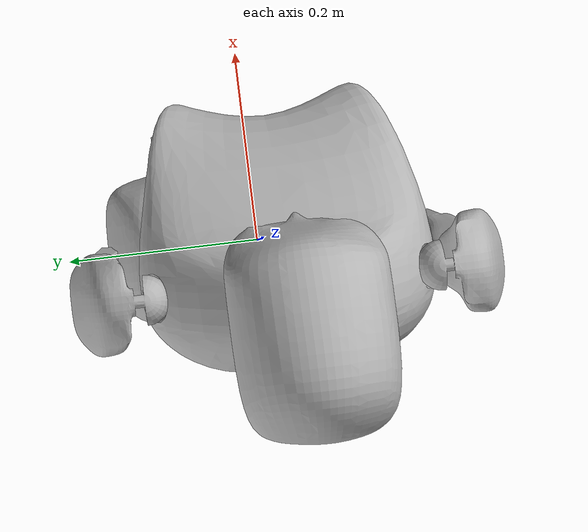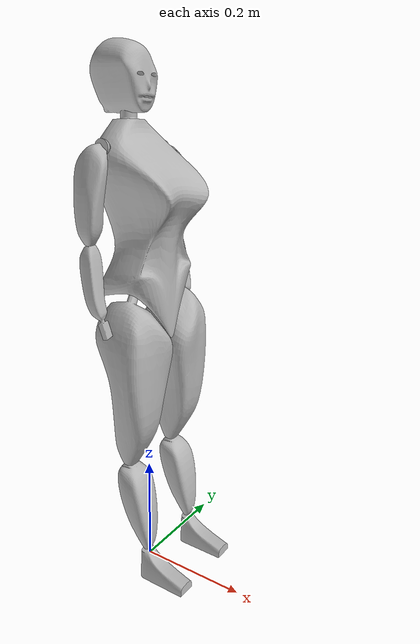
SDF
<?xml version='1.0'?>
<sdf version='1.7'>
  <model name='Selene'>

    <static>false</static>

    <!-- #######################################################   LINKS   ################################################################### -->
    <!-- Base -->
    <link name='base_link'>
      <inertial>
        <pose>-0.010002 0.01137 0.674728 0 -0 0</pose>
        <mass>3.78181</mass>
        <inertia>
          <ixx>0.0289882</ixx> <ixy>-2.34953e-05</ixy> <ixz>0.00203839</ixz>
          <iyy>0.0282472</iyy> <iyz>0.000277812</iyz> <izz>0.00985572</izz>
        </inertia>
      </inertial>

      <visual name='base_link_visual'>
        <pose>0 0 0 0 -0 0</pose>
        <geometry>
          <mesh>
            <scale>1 1 1</scale>
            <uri>file:///home/drak/ros2_ws/src/humanoid_robot/meshes/base_link.STL</uri>
          </mesh>
        </geometry>
      </visual>

      <collision name='base_link_collision'>
        <pose>0 0 0 0 -0 0</pose>
        <geometry>
          <mesh>
            <scale>1 1 1</scale>
            <uri>file:///home/drak/ros2_ws/src/humanoid_robot/meshes/base_link.STL</uri>
          </mesh>
        </geometry>
      </collision>
    </link>

    <!-- #####  UPPER BODY  ##### -->
    <!-- Head -->
    <link name='Head'>
      <pose relative_to='Neck_Pitch'>0 0 0 0 0 0</pose>
      <inertial>
        <pose>2e-06 -0 0.009204 0 -0 0</pose>
        <mass>0.0204756</mass>
        <inertia>
          <ixx>2.48857e-06</ixx> <ixy>1.58933e-11</ixy> <ixz>-1.53588e-11</ixz>
          <iyy>2.48861e-06</iyy> <iyz>1.05245e-12</iyz> <izz>2.30242e-06</izz>
        </inertia>
      </inertial>

      <visual name='Head_visual'>
        <pose>0 0 0 0 -0 0</pose>
        <geometry>
          <mesh>
            <scale>1 1 1</scale>
            <uri>file:///home/drak/ros2_ws/src/humanoid_robot/meshes/Head.STL</uri>
          </mesh>
        </geometry>
      </visual>

      <collision name='Head_collision'>
        <pose>0 0 0 0 -0 0</pose>
        <geometry>
          <mesh>
            <scale>1 1 1</scale>
            <uri>file:///home/drak/ros2_ws/src/humanoid_robot/meshes/Head.STL</uri>
          </mesh>
        </geometry>
      </collision>
    </link>

    <!-- *****  Shoulders  ***** -->
    <!-- Left Shoulder -->
    <link name='Shoulder_Left'>
      <pose relative_to='TorsoShoulder_Left_Roll'>0 0 0 0 0 0</pose>
      <inertial>
        <pose>-0.000226 -0.035481 -0.068302 0 -0 0</pose>
        <mass>0.173962</mass>
        <inertia>
          <ixx>0.000290784</ixx> <ixy>8.53619e-08</ixy> <ixz>9.28025e-07</ixz>
          <iyy>0.000299832</iyy> <iyz>-4.02822e-05</iyz> <izz>4.95215e-05</izz>
        </inertia>
      </inertial>

      <visual name='Shoulder_Left_visual'>
        <pose>0 0 0 0 -0 0</pose>
        <geometry>
          <mesh>
            <scale>1 1 1</scale>
            <uri>file:///home/drak/ros2_ws/src/humanoid_robot/meshes/Shoulder_Left.STL</uri>
          </mesh>
        </geometry>
      </visual>

      <collision name='Shoulder_Left_collision'>
        <pose>0 0 0 0 -0 0</pose>
        <geometry>
          <mesh>
            <scale>1 1 1</scale>
            <uri>file:///home/drak/ros2_ws/src/humanoid_robot/meshes/Shoulder_Left.STL</uri>
          </mesh>
        </geometry>
      </collision>
    </link>

   <!-- Right Shoulder -->
   <link name='Shoulder_Right'>
      <pose relative_to='TorsoShoulder_Right_Roll'>0 0 0 0 0 0</pose>
      <inertial>
        <pose>-0.000227 0.035481 -0.068303 0 -0 0</pose>
        <mass>0.173956</mass>
        <inertia>
          <ixx>0.000290776</ixx> <ixy>-8.64319e-08</ixy> <ixz>9.31069e-07</ixz>
          <iyy>0.000299821</iyy> <iyz>4.0282e-05</iyz> <izz>4.95193e-05</izz>
        </inertia>
      </inertial>

      <visual name='Shoulder_Right_visual'>
        <pose>0 0 0 0 -0 0</pose>
        <geometry>
          <mesh>
            <scale>1 1 1</scale>
            <uri>file:///home/drak/ros2_ws/src/humanoid_robot/meshes/Shoulder_Right.STL</uri>
          </mesh>
        </geometry>
      </visual>

      <collision name='Shoulder_Right_collision'>
        <pose>0 0 0 0 -0 0</pose>
        <geometry>
          <mesh>
            <scale>1 1 1</scale>
            <uri>file:///home/drak/ros2_ws/src/humanoid_robot/meshes/Shoulder_Right.STL</uri>
          </mesh>
        </geometry>
      </collision>
    </link>

    <!-- *****  Elbows  ***** -->
    <!-- Left Elbow -->
    <link name='Elbow_Left'>
      <pose relative_to='ShoulderElbow_Left'>0 0 0 0 -0 0</pose>
      <inertial>
        <pose>0.009283 -0.0055 -0.062153 0 -0 0</pose>
        <mass>0.0806796</mass>
        <inertia>
          <ixx>0.000100138</ixx> <ixy>8.50148e-07</ixy> <ixz>2.11719e-05</ixz>
          <iyy>0.000104806</iyy> <iyz>-4.72232e-06</iyz> <izz>1.42978e-05</izz>
        </inertia>
      </inertial>

      <visual name='Elbow_Left_visual'>
        <pose>0 0 0 0 -0 0</pose>
        <geometry>
          <mesh>
            <scale>1 1 1</scale>
            <uri>file:///home/drak/ros2_ws/src/humanoid_robot/meshes/Elbow_Left.STL</uri>
          </mesh>
        </geometry>
      </visual>

      <collision name='Elbow_Left_collision'>
        <pose>0 0 0 0 -0 0</pose>
        <geometry>
          <mesh>
            <scale>1 1 1</scale>
            <uri>file:///home/drak/ros2_ws/src/humanoid_robot/meshes/Elbow_Left.STL</uri>
          </mesh>
        </geometry>
      </collision>
    </link>

    <!-- Right Elbow -->
    <link name='Elbow_Right'>
      <pose relative_to='ShoulderElbow_Right'>0 0 0 0 -0 0</pose>
      <inertial>
        <pose>0.009283 0.0055 -0.062153 0 -0 0</pose>
        <mass>0.0806748</mass>
        <inertia>
          <ixx>0.000100131</ixx> <ixy>-8.50347e-07</ixy> <ixz>2.11696e-05</ixz>
          <iyy>0.000104798</iyy> <iyz>4.72283e-06</iyz> <izz>1.42969e-05</izz>
        </inertia>
      </inertial>

      <visual name='Elbow_Right_visual'>
        <pose>0 0 0 0 -0 0</pose>
        <geometry>
          <mesh>
            <scale>1 1 1</scale>
            <uri>file:///home/drak/ros2_ws/src/humanoid_robot/meshes/Elbow_Right.STL</uri>
          </mesh>
        </geometry>
      </visual>

      <collision name='Elbow_Right_collision'>
        <pose>0 0 0 0 -0 0</pose>
        <geometry>
          <mesh>
            <scale>1 1 1</scale>
            <uri>file:///home/drak/ros2_ws/src/humanoid_robot/meshes/Elbow_Right.STL</uri>
          </mesh>
        </geometry>
      </collision>
    </link>

    <!-- #####  LOWER BODY  ##### -->
    <!-- *****  Thighs  ***** -->
    <!-- Left Thigh -->
    <link name='Thigh_Left'>
      <pose relative_to='TorsoThigh_Left_Yaw'>0 0 0 0 0 0</pose>
      <inertial>
        <pose>0.023278 -0.039197 -0.143116 0 -0 0</pose>
        <mass>1.71253</mass>
        <inertia>
          <ixx>0.00996675</ixx> <ixy>-3.24703e-05</ixy> <ixz>0.000390411</ixz>
          <iyy>0.00993893</iyy> <iyz>-0.000169586</iyz> <izz>0.00203985</izz>
        </inertia>
      </inertial>

      <visual name='Thigh_Left_visual'>
        <pose>0 0 0 0 -0 0</pose>
        <geometry>
          <mesh>
            <scale>1 1 1</scale>
            <uri>file:///home/drak/ros2_ws/src/humanoid_robot/meshes/Thigh_Left.STL</uri>
          </mesh>
        </geometry>
      </visual>

      <collision name='Thigh_Left_collision'>
        <pose>0 0 0 0 -0 0</pose>
        <geometry>
          <mesh>
            <scale>1 1 1</scale>
            <uri>file:///home/drak/ros2_ws/src/humanoid_robot/meshes/Thigh_Left.STL</uri>
          </mesh>
        </geometry>
      </collision>
    </link>

    <!-- Right Thigh -->
    <link name='Thigh_Right'>
      <pose relative_to='TorsoThigh_Right_Yaw'>0 0 0 0 0 0</pose>
      <inertial>
        <pose>0.023281 0.039199 -0.143122 0 -0 0</pose>
        <mass>1.7125</mass>
        <inertia>
          <ixx>0.00996721</ixx> <ixy>3.26594e-05</ixy> <ixz>0.000390081</ixz>
          <iyy>0.00993943</iyy> <iyz>0.000169678</iyz> <izz>0.00204017</izz>
        </inertia>
      </inertial>

      <visual name='Thigh_Right_visual'>
        <pose>0 0 0 0 -0 0</pose>
        <geometry>
          <mesh>
            <scale>1 1 1</scale>
            <uri>file:///home/drak/ros2_ws/src/humanoid_robot/meshes/Thigh_Right.STL</uri>
          </mesh>
        </geometry>
      </visual>

      <collision name='Thigh_Right_collision'>
        <pose>0 0 0 0 -0 0</pose>
        <geometry>
          <mesh>
            <scale>1 1 1</scale>
            <uri>file:///home/drak/ros2_ws/src/humanoid_robot/meshes/Thigh_Right.STL</uri>
          </mesh>
        </geometry>
      </collision>
    </link>

    <!-- *****  Calves  ***** -->
    <!-- Left Calf -->
    <link name='Calf_Left'>
      <pose relative_to='ThighCalf_Left'>0 0 0 0 -0 0</pose>
      <inertial>
        <pose>0.01901 -0.0016 -0.076518 0 -0 0</pose>
        <mass>0.327205</mass>
        <inertia>
          <ixx>0.000560607</ixx> <ixy>1.83941e-06</ixy> <ixz>0.000117383</ixz>
          <iyy>0.000576927</iyy> <iyz>-6.31475e-06</iyz> <izz>0.000150877</izz>
        </inertia>
      </inertial>

      <visual name='Calf_Left_visual'>
        <pose>0 0 0 0 -0 0</pose>
        <geometry>
          <mesh>
            <scale>1 1 1</scale>
            <uri>file:///home/drak/ros2_ws/src/humanoid_robot/meshes/Calf_Left.STL</uri>
          </mesh>
        </geometry>
      </visual>

      <collision name='Calf_Left_collision'>
        <pose>0 0 0 0 -0 0</pose>
        <geometry>
          <mesh>
            <scale>1 1 1</scale>
            <uri>file:///home/drak/ros2_ws/src/humanoid_robot/meshes/Calf_Left.STL</uri>
          </mesh>
        </geometry>
      </collision>
    </link>
    <!-- Right Calf -->
    <link name='Calf_Right'>
      <pose relative_to='ThighCalf_Right'>0 0 0 0 -0 0</pose>
      <inertial>
        <pose>0.019003 0.001599 -0.076501 0 -0 0</pose>
        <mass>0.327294</mass>
        <inertia>
          <ixx>0.000560815</ixx> <ixy>-1.85322e-06</ixy> <ixz>0.000117482</ixz>
          <iyy>0.00057718</iyy> <iyz>6.35213e-06</iyz> <izz>0.000150937</izz>
        </inertia>
      </inertial>

      <visual name='Calf_Right_visual'>
        <pose>0 0 0 0 -0 0</pose>
        <geometry>
          <mesh>
            <scale>1 1 1</scale>
            <uri>file:///home/drak/ros2_ws/src/humanoid_robot/meshes/Calf_Right.STL</uri>
          </mesh>
        </geometry>
      </visual>

      <collision name='Calf_Right_collision'>
        <pose>0 0 0 0 -0 0</pose>
        <geometry>
          <mesh>
            <scale>1 1 1</scale>
            <uri>file:///home/drak/ros2_ws/src/humanoid_robot/meshes/Calf_Right.STL</uri>
          </mesh>
        </geometry>
      </collision>
    </link>

    <!-- *****  Feet  ***** -->
    <!-- Left Foot -->
    <link name='Foot_Left'>
      <pose relative_to='CalfFoot_Left'>0 0 0 0 -0 0</pose>
      <inertial>
        <pose>0.030274 8.6e-05 -0.040996 0 -0 0</pose>
        <mass>0.109031</mass>
        <inertia>
          <ixx>3.0156e-05</ixx> <ixy>1.21489e-07</ixy> <ixz>1.8161e-05</ixz>
          <iyy>9.62099e-05</iyy> <iyz>-1.16818e-07</iyz> <izz>8.50912e-05</izz>
        </inertia>
      </inertial>

      <visual name='Foot_Left_visual'>
        <pose>0 0 0 0 -0 0</pose>
        <geometry>
          <mesh>
            <scale>1 1 1</scale>
            <uri>file:///home/drak/ros2_ws/src/humanoid_robot/meshes/Foot_Left.STL</uri>
          </mesh>
        </geometry>
      </visual>

      <collision name='Foot_Left_collision'>
        <pose>0 0 0 0 -0 0</pose>
        <geometry>
          <mesh>
            <scale>1 1 1</scale>
            <uri>file:///home/drak/ros2_ws/src/humanoid_robot/meshes/Foot_Left.STL</uri>
          </mesh>
        </geometry>
      </collision>

      <sensor name="contact_sensor" type="contact">
        <update_rate>100</update_rate>  <!-- How often it updates -->
        <always_on>true</always_on>
        <visualize>true</visualize>
        <contact>
          <collision>Foot_Left_collision</collision>  <!-- The part that detects contact -->
        </contact>
      </sensor>
    </link>

    <!-- Right Foot -->
    <link name='Foot_Right'>
      <pose relative_to='CalfFoot_Right'>0 0 0 0 -0 0</pose>
      <inertial>
        <pose>0.030274 8.6e-05 -0.040996 0 -0 0</pose>
        <mass>0.109031</mass>
        <inertia>
          <ixx>3.0156e-05</ixx> <ixy>1.21487e-07</ixy> <ixz>1.8161e-05</ixz>
          <iyy>9.621e-05</iyy> <iyz>-1.16801e-07</iyz> <izz>8.50912e-05</izz>
        </inertia>
      </inertial>

      <visual name='Foot_Right_visual'>
        <pose>0 0 0 0 -0 0</pose>
        <geometry>
          <mesh>
            <scale>1 1 1</scale>
            <uri>file:///home/drak/ros2_ws/src/humanoid_robot/meshes/Foot_Right.STL</uri>
          </mesh>
        </geometry>
      </visual>

      <collision name='Foot_Right_collision'>
        <pose>0 0 0 0 -0 0</pose>
        <geometry>
          <mesh>
            <scale>1 1 1</scale>
            <uri>file:///home/drak/ros2_ws/src/humanoid_robot/meshes/Foot_Right.STL</uri>
          </mesh>
        </geometry>
      </collision>

      <sensor name="contact_sensor" type="contact">
        <update_rate>100</update_rate>  <!-- How often it updates -->
        <always_on>true</always_on>
        <visualize>true</visualize>
        <contact>
          <collision>Foot_Right_collision</collision>  <!-- The part that detects contact -->
        </contact>
      </sensor>
    </link>

    <!-- #######################################################   JOINTS   ################################################################### -->
    <joint name="world_joint" type="fixed">
        <parent>world</parent>
        <child>base_link</child>
    </joint>

    <!-- Neck -->
    <joint name='Neck_Yaw' type='revolute'>
      <pose relative_to='base_link'>-0.044306 0.010853 0.81525 0 0 0</pose>
      <parent>base_link</parent>
      <child>Neck_Yaw_Link</child>

      <!-- (Left/Right Movement) -->
      <axis>
        <xyz>0 0 1</xyz>
        <limit>
            <lower>-1.0472</lower>  <!-- 60 degrees-->
            <upper>1.0472</upper>
        </limit>
        <dynamics>
            <damping>0.05</damping>
            <friction>0.5</friction>
        </dynamics>
      </axis>

      <sensor name="force_torque_sensor" type="force_torque">
        <pose degrees="true">0 0 0.0   30 0 0</pose>
        <update_rate>100</update_rate>
        <always_on>true</always_on>
        <visualize>true</visualize>
        <topic>force_torque1</topic>
        <force_torque>
          <frame>child</frame>
          <measure_direction>parent_to_child</measure_direction>
        </force_torque>
      </sensor>

    </joint>

    <!-- Neck Yaw Link (This is a dummy link which allows us to split a universal into 2 revolute joints) -->
    <link name='Neck_Yaw_Link'>
      <pose relative_to='Neck_Yaw'>0 0 0 0 0 0</pose>
    </link>

    <joint name='Neck_Pitch' type='revolute'>
      <pose relative_to='base_link'>-0.044306 0.010853 0.81525 0 0 0</pose>
      <parent>Neck_Yaw_Link</parent>
      <child>Head</child>

      <!-- (Up/Down Movement) -->
      <axis>
        <xyz>0 1 0</xyz>
        <limit>
            <lower>-0.523599</lower>  <!-- 30 degrees -->
            <upper>0.523599</upper>
        </limit>
        <dynamics>
            <damping>0.05</damping>
            <friction>0.5</friction>
        </dynamics>
      </axis>

      <sensor name="force_torque_sensor" type="force_torque">
        <pose degrees="true">0 0 0.0   30 0 0</pose>
        <update_rate>100</update_rate>
        <always_on>true</always_on>
        <visualize>true</visualize>
        <topic>force_torque1</topic>
        <force_torque>
          <frame>child</frame>
          <measure_direction>parent_to_child</measure_direction>
        </force_torque>
      </sensor>

    </joint>

    <!-- Left Shoulder and Torso -->
    <joint name='TorsoShoulder_Left_Pitch' type='revolute'>
      <pose relative_to='base_link'>-0.033379 -0.064693 0.78215 0 -0 0</pose>
      <parent>base_link</parent>
      <child>LShoulder_Pitch</child>
      <axis>
        <xyz>0 1 0</xyz>
        <limit>
            <lower>-3.14159</lower>  <!-- -20 - 180 degrees-->
            <upper>0.349066</upper>
        </limit>
        <dynamics>
            <damping>0.05</damping>
            <friction>0.5</friction>
        </dynamics>
      </axis>

      <sensor name="force_torque_sensor" type="force_torque">
        <pose degrees="true">0 0 0.0   30 0 0</pose>
        <update_rate>100</update_rate>
        <always_on>true</always_on>
        <visualize>true</visualize>
        <topic>force_torque2</topic>
        <force_torque>
          <frame>child</frame>
          <measure_direction>parent_to_child</measure_direction>
        </force_torque>
      </sensor>
    </joint>

    <!-- LShoulder_Pitch (This is a dummy link which allows us to split a universal into 2 revolute joints) -->
    <link name='LShoulder_Pitch'>
      <pose relative_to='TorsoShoulder_Left_Pitch'>0 0 0 0 0 0</pose>
    </link>

    <joint name='TorsoShoulder_Left_Roll' type='revolute'>
      <pose relative_to='base_link'>-0.033379 -0.064693 0.78215 0 -0 0</pose>
      <parent>LShoulder_Pitch</parent>
      <child>Shoulder_Left</child>
      <axis>
        <xyz>1 0 0</xyz>
        <limit>
            <lower>-1.0472</lower>  <!-- 0 - 60 degrees -->
            <upper>0</upper>
        </limit>
        <dynamics>
            <damping>0.05</damping>
            <friction>0.5</friction>
        </dynamics>
      </axis>

      <sensor name="force_torque_sensor" type="force_torque">
        <pose degrees="true">0 0 0.0   30 0 0</pose>
        <update_rate>100</update_rate>
        <always_on>true</always_on>
        <visualize>true</visualize>
        <topic>force_torque2</topic>
        <force_torque>
          <frame>child</frame>
          <measure_direction>parent_to_child</measure_direction>
        </force_torque>
      </sensor>
    </joint>

    <!-- Left Elbow and Shoulder -->
    <joint name='ShoulderElbow_Left' type='revolute'>
      <pose relative_to='Shoulder_Left'>-0.000732 -0.040103 -0.14681 0 -0 0</pose>
      <parent>Shoulder_Left</parent>
      <child>Elbow_Left</child>
      <axis>
        <xyz>0 1 0</xyz>
        <limit>
            <lower>-1.74533</lower>    <!-- -20 - 100 deg-->
            <upper>0.349066</upper>
        </limit>
        <dynamics>
            <damping>0.05</damping>
            <friction>0.5</friction>
        </dynamics>
      </axis>

      <sensor name="force_torque_sensor" type="force_torque">
        <pose degrees="true">0 0 0.0   30 0 0</pose>
        <update_rate>100</update_rate>
        <always_on>true</always_on>
        <visualize>true</visualize>
        <topic>force_torque3</topic>
        <force_torque>
          <frame>child</frame>
          <measure_direction>parent_to_child</measure_direction>
        </force_torque>
      </sensor>
    </joint>

    <!-- Right Shoulder and Torso -->
    <joint name='TorsoShoulder_Right_Pitch' type='revolute'>
      <pose relative_to='base_link'>-0.033308 0.08489 0.77914 0 -0 0</pose>
      <parent>base_link</parent>
      <child>RShoulder_Pitch</child>
      <axis>
        <xyz>0 1 0</xyz>  <!-- Rotation around Y-axis -->
        <limit>
            <lower>-3.14159</lower>  <!-- -20 - 180 degrees-->
            <upper>0.349066</upper>
        </limit>
        <dynamics>
            <damping>0.05</damping>
            <friction>0.5</friction>
        </dynamics>
      </axis>

      <sensor name="force_torque_sensor" type="force_torque">
        <pose degrees="true">0 0 0.0   30 0 0</pose>
        <update_rate>100</update_rate>
        <always_on>true</always_on>
        <visualize>true</visualize>
        <topic>force_torque4</topic>
        <force_torque>
          <frame>child</frame>
          <measure_direction>parent_to_child</measure_direction>
        </force_torque>
      </sensor>
    </joint>

    <!-- RShoulder_Pitch (This is a dummy link which allows us to split a universal into 2 revolute joints) -->
    <link name='RShoulder_Pitch'>
      <pose relative_to='TorsoShoulder_Right_Pitch'>0 0 0 0 0 0</pose>
    </link>

    <joint name='TorsoShoulder_Right_Roll' type='revolute'>
      <pose relative_to='base_link'>-0.033308 0.08489 0.77914 0 -0 0</pose>
      <parent>RShoulder_Pitch</parent>
      <child>Shoulder_Right</child>
      <axis>
        <xyz>1 0 0</xyz>  <!-- Rotation around X-axis -->
        <limit>
            <lower>0</lower>  <!-- 0 - 60 degrees -->
            <upper>1.0472</upper>
        </limit>
        <dynamics>
            <damping>0.05</damping>
            <friction>0.5</friction>
        </dynamics>
      </axis>

      <sensor name="force_torque_sensor" type="force_torque">
        <pose degrees="true">0 0 0.0   30 0 0</pose>
        <update_rate>100</update_rate>
        <always_on>true</always_on>
        <visualize>true</visualize>
        <topic>force_torque4</topic>
        <force_torque>
          <frame>child</frame>
          <measure_direction>parent_to_child</measure_direction>
        </force_torque>
      </sensor>
    </joint>

    <!-- Right Elbow and Shoulder -->
    <joint name='ShoulderElbow_Right' type='revolute'>
      <pose relative_to='Shoulder_Right'>-0.000732 0.040103 -0.14681 0 -0 0</pose>
      <parent>Shoulder_Right</parent>
      <child>Elbow_Right</child>
      <axis>
        <xyz>0 1 0</xyz>
        <limit>
            <lower>-1.74533</lower>    <!-- -20 to 100 deg-->
            <upper>0.349066</upper>
        </limit>
        <dynamics>
            <damping>0.05</damping>
            <friction>0.5</friction>
        </dynamics>
      </axis>

      <sensor name="force_torque_sensor" type="force_torque">
        <pose degrees="true">0 0 0.0   30 0 0</pose>
        <update_rate>100</update_rate>
        <always_on>true</always_on>
        <visualize>true</visualize>
        <topic>force_torque5</topic>
        <force_torque>
          <frame>child</frame>
          <measure_direction>parent_to_child</measure_direction>
        </force_torque>
      </sensor>
    </joint>

    <!-- Left Thigh and Torso -->
    <joint name='TorsoThigh_Left_Pitch' type='revolute'>
      <pose relative_to='base_link'>-0.013335 -0.010993 0.55295 0 -0 0</pose>
      <parent>base_link</parent>
      <child>LThigh_Pitch</child>
      <axis>
        <xyz>0 1 0</xyz>
        <limit>
            <lower>-2.0944</lower> <!-- -60 - 120 degrees-->
            <upper>0.349066</upper>
        </limit>
        <dynamics>
            <friction>0.5</friction>
        </dynamics>
      </axis>

      <sensor name="force_torque_sensor" type="force_torque">
        <pose degrees="true">0 0 0.0   30 0 0</pose>
        <update_rate>100</update_rate>
        <always_on>true</always_on>
        <visualize>true</visualize>
        <topic>force_torque6</topic>
        <force_torque>
          <frame>child</frame>
          <measure_direction>parent_to_child</measure_direction>
        </force_torque>
      </sensor>
    </joint>

    <!-- LThigh_Pitch (This is a dummy link which allows us to split a universal into 2 revolute joints) -->
    <link name='LThigh_Pitch'>
      <pose relative_to='TorsoThigh_Left_Pitch'>0 0 0 0 0 0</pose>
    </link>

    <joint name='TorsoThigh_Left_Yaw' type='revolute'>
      <pose relative_to='base_link'>-0.013335 -0.010993 0.55295 0 -0 0</pose>
      <parent>LThigh_Pitch</parent>
      <child>Thigh_Left</child>

      <axis>
        <xyz>0 0 1</xyz>
        <limit>
            <lower>-0.0872665</lower>  <!-- -5 - 20 degrees -->
            <upper>0.349066</upper>
        </limit>
        <dynamics>
            <friction>0.5</friction>
        </dynamics>
      </axis>

    <sensor name="force_torque_sensor" type="force_torque">
        <pose degrees="true">0 0 0.0   30 0 0</pose>
        <update_rate>100</update_rate>
        <always_on>true</always_on>
        <visualize>true</visualize>
        <topic>force_torque6</topic>
        <force_torque>
          <frame>child</frame>
          <measure_direction>parent_to_child</measure_direction>
        </force_torque>
      </sensor>
    </joint>

    <!-- Left Calf and Thigh -->
    <joint name='ThighCalf_Left' type='revolute'>
      <pose relative_to='Thigh_Left'>0.009424 -0.039542 -0.32005 0 -0 0</pose>
      <parent>Thigh_Left</parent>
      <child>Calf_Left</child>
      <axis>
        <xyz>0 1 0</xyz>
        <limit>
            <lower>-0.349066</lower> <!-- -20 - 100 degrees-->
            <upper>1.74533</upper>
        </limit>
        <dynamics>
            <friction>0.5</friction>
        </dynamics>
      </axis>

      <sensor name="force_torque_sensor" type="force_torque">
        <pose degrees="true">0 0 0.0   30 0 0</pose>
        <update_rate>100</update_rate>
        <always_on>true</always_on>
        <visualize>true</visualize>
        <topic>force_torque7</topic>
        <force_torque>
          <frame>child</frame>
          <measure_direction>parent_to_child</measure_direction>
        </force_torque>
      </sensor>
    </joint>

    <!-- Left Foot and Calf -->
    <joint name='CalfFoot_Left' type='revolute'>
      <pose relative_to='Calf_Left'>0.039418 -0.002447 -0.17177 0 -0 0</pose>
      <parent>Calf_Left</parent>
      <child>Foot_Left</child>
      <axis>
        <xyz>0 1 0</xyz>
        <limit>
            <lower>-0.785398</lower> <!-- 45 degrees-->
            <upper>0.785398</upper>
        </limit>
        <dynamics>
            <friction>0.5</friction>
        </dynamics>
      </axis>

      <sensor name="force_torque_sensor" type="force_torque">
        <pose degrees="true">0 0 0.0   30 0 0</pose>
        <update_rate>100</update_rate>
        <always_on>true</always_on>
        <visualize>true</visualize>
        <topic>force_torque8</topic>
        <force_torque>
          <frame>child</frame>
          <measure_direction>parent_to_child</measure_direction>
        </force_torque>
      </sensor>
    </joint>

    <!-- Right Thigh and Torso -->
    <joint name='TorsoThigh_Right_Pitch' type='revolute'>
      <pose relative_to='base_link'>-0.015152 0.040137 0.55044 0 -0 0</pose>
      <parent>base_link</parent>
      <child>RThigh_Pitch</child>
      <axis>
      <xyz>0 1 0</xyz>
      <limit>
          <lower>-3.14159</lower> <!-- 60 - 180 degrees-->
          <upper>0.349066</upper>
      </limit>
      <dynamics>
          <friction>0.5</friction>
      </dynamics>
      </axis>

      <sensor name="force_torque_sensor" type="force_torque">
        <pose degrees="true">0 0 0.0   30 0 0</pose>
        <update_rate>100</update_rate>
        <always_on>true</always_on>
        <visualize>true</visualize>
        <topic>force_torque9</topic>
        <force_torque>
          <frame>child</frame>
          <measure_direction>parent_to_child</measure_direction>
        </force_torque>
      </sensor>
    </joint>

    <!-- RThigh_Pitch (This is a dummy link which allows us to split a universal into 2 revolute joints) -->
    <link name='RThigh_Pitch'>
      <pose relative_to='TorsoThigh_Right_Pitch'>0 0 0 0 0 0</pose>
    </link>

    <joint name='TorsoThigh_Right_Yaw' type='revolute'>
      <pose relative_to='base_link'>-0.015152 0.040137 0.55044 0 -0 0</pose>
      <parent>RThigh_Pitch</parent>
      <child>Thigh_Right</child>
      <axis>
        <xyz>0 0 1</xyz>
        <limit>
            <lower>-0.0872665</lower>  <!-- -5 - 20 degrees -->
            <upper>0.349066</upper>
        </limit>
        <dynamics>
            <friction>0.5</friction>
        </dynamics>
      </axis>

      <sensor name="force_torque_sensor" type="force_torque">
        <pose degrees="true">0 0 0.0 30 0 0</pose>
        <update_rate>100</update_rate>
        <always_on>true</always_on>
        <visualize>true</visualize>
        <topic>force_torque9</topic>
        <force_torque>
          <frame>child</frame>
          <measure_direction>parent_to_child</measure_direction>
        </force_torque>
      </sensor>
    </joint>

    <!-- Right Calf and Thigh -->
    <joint name='ThighCalf_Right' type='revolute'>
      <pose relative_to='Thigh_Right'>0.009424 0.039542 -0.32005 0 -0 0</pose>
      <parent>Thigh_Right</parent>
      <child>Calf_Right</child>
      <axis>
        <xyz>0 1 0</xyz>
        <limit>
            <lower>-0.349066</lower> <!-- -20 - 100 degrees-->
            <upper>1.74533</upper>
        </limit>
        <dynamics>
            <friction>0.5</friction>
        </dynamics>
      </axis>

      <sensor name="force_torque_sensor" type="force_torque">
        <pose degrees="true">0 0 0.0   30 0 0</pose>
        <update_rate>100</update_rate>
        <always_on>true</always_on>
        <visualize>true</visualize>
        <topic>force_torque10</topic>
        <force_torque>
          <frame>child</frame>
          <measure_direction>parent_to_child</measure_direction>
        </force_torque>
      </sensor>
    </joint>

    <!-- Right Foot and Calf -->
    <joint name='CalfFoot_Right' type='revolute'>
      <pose relative_to='Calf_Right'>0.039418 0.002408 -0.17177 0 -0 0</pose>
      <parent>Calf_Right</parent>
      <child>Foot_Right</child>
      <axis>
        <xyz>0 1 0</xyz>
        <limit>
            <lower>-0.785398</lower> <!-- 45 degrees-->
            <upper>0.785398</upper>
        </limit>
        <dynamics>
            <friction>0.5</friction>
        </dynamics>
      </axis>

      <sensor name="force_torque_sensor" type="force_torque">
        <pose degrees="true">0 0 0.0   30 0 0</pose>
        <update_rate>100</update_rate>
        <always_on>true</always_on>
        <visualize>true</visualize>
        <topic>force_torque11</topic>
        <force_torque>
          <frame>child</frame>
          <measure_direction>parent_to_child</measure_direction>
        </force_torque>
      </sensor>
    </joint>

    <!-- ****************************   IMU Sensor   **************************** -->
    <!-- IMU Link -->
    <link name="IMU_Link">
        <inertial>
          <pose>0 0.01 0.6 0 0 0</pose>
          <mass>0.1</mass>
          <inertia>
              <ixx>0.01</ixx> <ixy>0.0</ixy> <ixz>0.0</ixz>
              <iyy>0.01</iyy> <iyz>0.0</iyz> <izz>0.01</izz>
          </inertia>
        </inertial>

        <visual name="IMU_visual">
          <pose>0 0.01 0.6 0 -0 0</pose>
          <geometry>
            <sphere>
                <radius>0.005</radius>
            </sphere>
          </geometry>
        </visual>

        <collision name="IMU_collision">
          <pose>0 0.01 0.6 0 -0 0</pose>
          <geometry>
            <sphere>
                <radius>0.005</radius>
            </sphere>
          </geometry>
        </collision>

        <sensor name="imu_sensor" type="imu">
          <always_on>true</always_on>
          <update_rate>100</update_rate>
          <pose>0 0.01 0.6 0 -0 0</pose>
          <plugin name="imu_plugin" filename="libgazebo_ros_imu_sensor.so">
              <updateRateHZ>100.0</updateRateHZ>
              <gaussianNoise>0.05</gaussianNoise>
              <xyzOffset>0 0 0</xyzOffset>
              <rpyOffset>0 0 0</rpyOffset>
              <frameName>IMU_Link</frameName>
              <initialOrientationAsReference>false</initialOrientationAsReference>
          </plugin>
        </sensor>
    </link>

    <joint name="IMU_Torso_Joint" type="fixed">
      <pose>0 0.01 0.6 0 -0 0</pose>
      <parent>base_link</parent>
      <child>IMU_Link</child>
    </joint>

  <plugin name="joint_state_publisher" filename="libgazebo_ros_joint_state_publisher.so">
    <ros>
      <namespace>/</namespace>
      <remapping>joint_states:=/joint_states</remapping>
    </ros>
    <joint_name>Neck_Pitch</joint_name>
    <joint_name>Neck_Yaw</joint_name>

    <joint_name>TorsoShoulder_Left_Pitch</joint_name>
    <joint_name>TorsoShoulder_Left_Roll</joint_name>
    <joint_name>ShoulderElbow_Left</joint_name>

    <joint_name>TorsoShoulder_Right_Pitch</joint_name>
    <joint_name>TorsoShoulder_Right_Roll</joint_name>
    <joint_name>ShoulderElbow_Right</joint_name>

    <joint_name>TorsoThigh_Left_Pitch</joint_name>
    <joint_name>TorsoThigh_Left_Yaw</joint_name>
    <joint_name>ThighCalf_Left</joint_name>
    <joint_name>CalfFoot_Left</joint_name>

    <joint_name>TorsoThigh_Right_Pitch</joint_name>
    <joint_name>TorsoThigh_Right_Yaw</joint_name>
    <joint_name>ThighCalf_Right</joint_name>
    <joint_name>CalfFoot_Right</joint_name>
    <update_rate>50</update_rate>
  </plugin>

  <plugin filename="libgazebo_ros2_control.so" name="gazebo_ros2_control">
    <parameters>file:///home/drak/ros2_ws/src/humanoid_robot/config/controller_config.yaml</parameters>
  </plugin>

  <transmission name="Neck_Yaw_trans">
    <type>transmission_interface/SimpleTransmission</type>
    <joint name="Neck_Yaw">
      <hardwareInterface>hardware_interface/PositionJointInterface</hardwareInterface>
    </joint>
    <actuator name="Neck_Yaw_motor">
      <mechanicalReduction>1</mechanicalReduction>
    </actuator>
  </transmission>

  </model>
</sdf>
